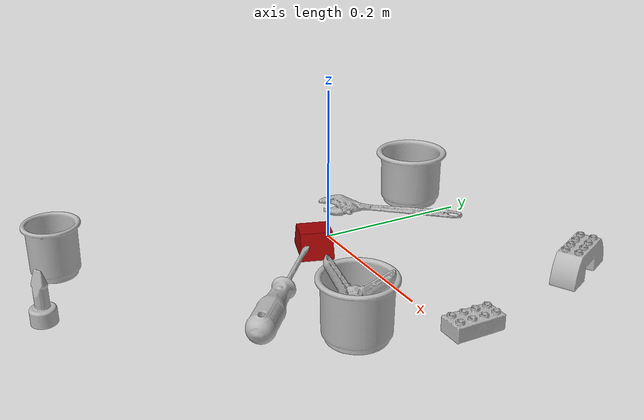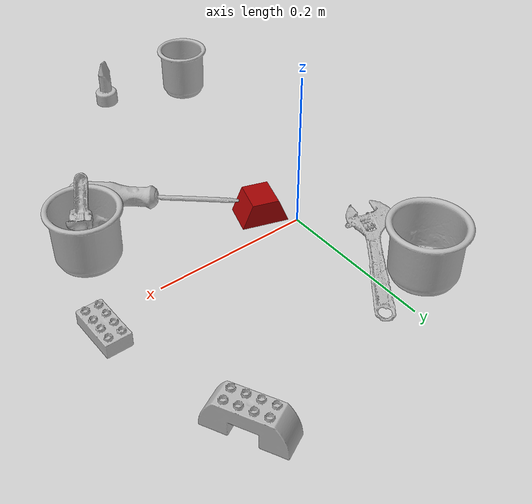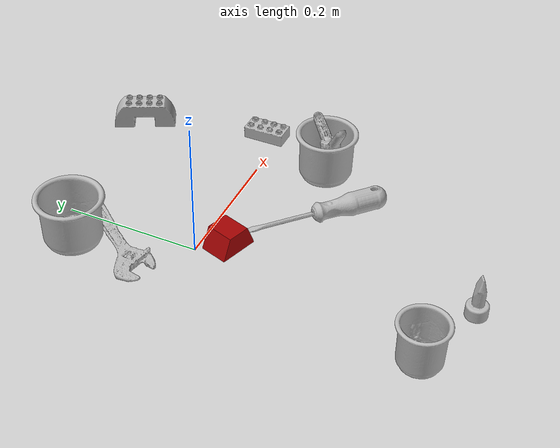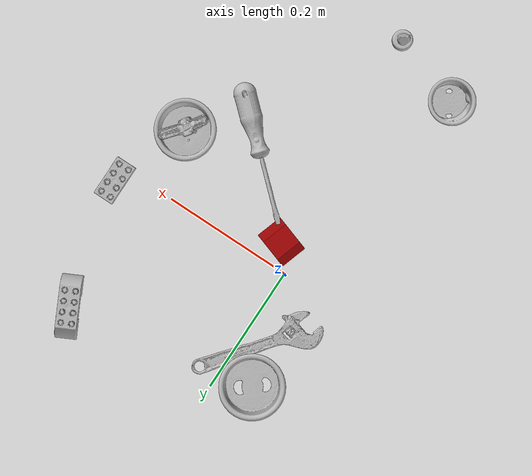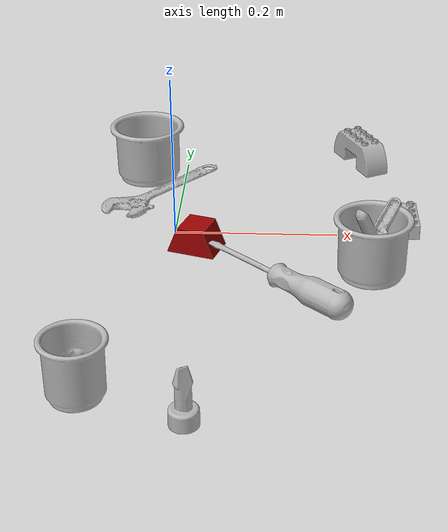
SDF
<sdf version="1.4">
  <world name="default">
    <light name="light1" type="point">
      <pose>0 0 1 0 0 0</pose>
      <diffuse>3 3 3 1</diffuse>
      <specular>3 3 3 1</specular>
    </light>
    <light name="light2" type="point">
      <pose>0 0.5 2 0 0 0</pose>
      <diffuse>1 1 1 1</diffuse>
      <specular>1 1 1 1</specular>
    </light>
    <light name="light3" type="point">
      <pose>0 0.5 2 0 0 0</pose>
      <diffuse>3 3 3 1</diffuse>
      <specular>3 3 3 1</specular>
    </light>
    <scene>
      <ambient>0.7 0.7 0.7</ambient>
    </scene>
    <model name="cup1">
      <link name="link_cup1">
        <collision name="default">
          <geometry>
            <mesh>
              <uri>model://d_cups/collision_meshes/collision.obj</uri>
              <scale>1.0 1.0 1.0</scale>
            </mesh>
          </geometry>
          <surface>
            <friction>
              <ode>
                <mu>0.5</mu>
                <mu2>0.5</mu2>
              </ode>
            </friction>
          <contact>
        <ode>
            <max_vel>0</max_vel>
            <min_depth>0.0001</min_depth>
            <kp>1e8</kp>
        </ode>
    </contact></surface>
        </collision>
        <visual name="default">
          <geometry>
            <mesh>
              <uri>model://d_cups/visual_meshes/visual.dae</uri>
              <scale>1.0 1.0 1.0</scale>
            </mesh>
          </geometry>
        </visual>
        <inertial>
          <mass>0.06783133745193481</mass>
          <pose>0.0008068059105426073 0.0019117397023364902 -0.002266651252284646 0.24012426461604838 -0.24709695541432683 0.5942481546461544</pose>
          <inertia>
            <ixx>5.679078e-05</ixx>
            <iyy>5.662642e-05</iyy>
            <izz>5.1405317e-05</izz>
            <ixy>0</ixy>
            <ixz>0</ixz>
            <iyz>0</iyz>
          </inertia>
        </inertial>
      </link>
      <pose>-0.06447805464267731 -0.34415432810783386 0.034659016877412796 -6.573829931679173e-07 -4.705106808737997e-07 1.5658507029413482</pose>
    </model>
    <model name="cup2">
      <link name="link_cup2">
        <collision name="default">
          <geometry>
            <mesh>
              <uri>model://h_cups/collision_meshes/collision.obj</uri>
              <scale>1.0 1.0 1.0</scale>
            </mesh>
          </geometry>
          <surface>
            <friction>
              <ode>
                <mu>0.5</mu>
                <mu2>0.5</mu2>
              </ode>
            </friction>
          <contact>
        <ode>
            <max_vel>0</max_vel>
            <min_depth>0.0001</min_depth>
            <kp>1e8</kp>
        </ode>
    </contact></surface>
        </collision>
        <visual name="default">
          <geometry>
            <mesh>
              <uri>model://h_cups/visual_meshes/visual.dae</uri>
              <scale>1.0 1.0 1.0</scale>
            </mesh>
          </geometry>
        </visual>
        <inertial>
          <mass>0.0420527309179306</mass>
          <pose>-2.702834171941504e-05 0.0002301869390066713 -0.0018405404407531023 -0.02436231807299455 0.06545237013505961 0.1288477560592675</pose>
          <inertia>
            <ixx>5.430915e-05</ixx>
            <iyy>5.3661057e-05</iyy>
            <izz>5.69554e-05</izz>
            <ixy>0</ixy>
            <ixz>0</ixz>
            <iyz>0</iyz>
          </inertia>
        </inertial>
      </link>
      <pose>0.2367304414510727 -0.09591358155012131 0.03775802254676819 -4.3489730855786055e-06 -7.635528211849093e-06 -0.2120944897519028</pose>
    </model>
    <model name="cup3">
      <link name="link_cup3">
        <collision name="default">
          <geometry>
            <mesh>
              <uri>model://i_cups/collision_meshes/collision.obj</uri>
              <scale>1.0 1.0 1.0</scale>
            </mesh>
          </geometry>
          <surface>
            <friction>
              <ode>
                <mu>0.5</mu>
                <mu2>0.5</mu2>
              </ode>
            </friction>
          <contact>
        <ode>
            <max_vel>0</max_vel>
            <min_depth>0.0001</min_depth>
            <kp>1e8</kp>
        </ode>
    </contact></surface>
        </collision>
        <visual name="default">
          <geometry>
            <mesh>
              <uri>model://i_cups/visual_meshes/visual.dae</uri>
              <scale>1.0 1.0 1.0</scale>
            </mesh>
          </geometry>
        </visual>
        <inertial>
          <mass>0.1172947883605957</mass>
          <pose>0.00011240218736929819 0.00016797319403849542 -0.0008579035638831556 -0.028982974239284674 -0.039873277979934216 -0.3459139003356122</pose>
          <inertia>
            <ixx>0.00016239638</ixx>
            <iyy>0.00016382721</iyy>
            <izz>0.00018150422</izz>
            <ixy>0</ixy>
            <ixz>0</ixz>
            <iyz>0</iyz>
          </inertia>
        </inertial>
      </link>
      <pose>-0.050700053572654724 0.1629934459924698 0.03777485713362694 0.0019473508339820109 -0.006344863385908255 0.38031959119955555</pose>
    </model>
    <model name="toy1">
      <link name="link_toy1">
        <collision name="default">
          <geometry>
            <mesh>
              <uri>model://prism/collision_meshes/collision.obj</uri>
              <scale>0.5 0.5 0.5</scale>
            </mesh>
          </geometry>
          <surface>
            <friction>
              <ode>
                <mu>0.5</mu>
                <mu2>0.5</mu2>
              </ode>
            </friction>
          <contact>
        <ode>
            <max_vel>0</max_vel>
            <min_depth>0.0001</min_depth>
            <kp>1e8</kp>
        </ode>
    </contact></surface>
        </collision>
        <visual name="default">
          <geometry>
            <mesh>
              <uri>model://prism/visual_meshes/visual.dae</uri>
              <scale>0.5 0.5 0.5</scale>
            </mesh>
          </geometry>
        </visual>
        <inertial>
          <mass>0.04854338616132736</mass>
          <pose>-4.92679828312248e-05 -2.480786349678965e-07 -0.0016934549203142524 0.0 0.006559181697473799 0.0</pose>
          <inertia>
            <ixx>1.0952453e-05</ixx>
            <iyy>1.3236178e-05</iyy>
            <izz>1.6212734e-05</izz>
            <ixy>0</ixy>
            <ixz>0</ixz>
            <iyz>0</iyz>
          </inertia>
        </inertial>
      </link>
      <pose>0.029384857043623924 -0.03696337342262268 0.016084924340248108 1.0221792955277106e-05 2.7783497341581063e-05 2.8256212483783067</pose>
    </model>
    <model name="toy2">
      <link name="link_toy2">
        <collision name="default">
          <geometry>
            <mesh>
              <uri>model://e_toy_airplane/collision_meshes/collision.obj</uri>
              <scale>1.0 1.0 1.0</scale>
            </mesh>
          </geometry>
          <surface>
            <friction>
              <ode>
                <mu>0.5</mu>
                <mu2>0.5</mu2>
              </ode>
            </friction>
          <contact>
        <ode>
            <max_vel>0</max_vel>
            <min_depth>0.0001</min_depth>
            <kp>1e8</kp>
        </ode>
    </contact></surface>
        </collision>
        <visual name="default">
          <geometry>
            <mesh>
              <uri>model://e_toy_airplane/visual_meshes/visual.dae</uri>
              <scale>1.0 1.0 1.0</scale>
            </mesh>
          </geometry>
        </visual>
        <inertial>
          <mass>0.014407381415367126</mass>
          <pose>0.00011740459740394726 -2.2482932763523422e-05 -0.011187206022441387 0.005518488041491648 0.009228285270614433 0.15041380385765837</pose>
          <inertia>
            <ixx>4.397297e-06</ixx>
            <iyy>4.352315e-06</iyy>
            <izz>1.3215607e-06</izz>
            <ixy>0</ixy>
            <ixz>0</ixz>
            <iyz>0</iyz>
          </inertia>
        </inertial>
      </link>
      <pose>0.044588495045900345 -0.38394585251808167 0.033212218433618546 6.349147436090359e-05 -9.13340978178272e-05 -1.208145316757221</pose>
    </model>
    <model name="toy3">
      <link name="link_toy3">
        <collision name="default">
          <geometry>
            <mesh>
              <uri>model://e_lego_duplo/collision_meshes/collision.obj</uri>
              <scale>1.0 1.0 1.0</scale>
            </mesh>
          </geometry>
          <surface>
            <friction>
              <ode>
                <mu>0.5</mu>
                <mu2>0.5</mu2>
              </ode>
            </friction>
          <contact>
        <ode>
            <max_vel>0</max_vel>
            <min_depth>0.0001</min_depth>
            <kp>1e8</kp>
        </ode>
    </contact></surface>
        </collision>
        <visual name="default">
          <geometry>
            <mesh>
              <uri>model://e_lego_duplo/visual_meshes/visual.dae</uri>
              <scale>1.0 1.0 1.0</scale>
            </mesh>
          </geometry>
        </visual>
        <inertial>
          <mass>0.059077512472867966</mass>
          <pose>0.00032560460385866463 0.0002348544221604243 0.0019521447829902172 -0.0225678114641467 -6.824730634042773e-05 -0.007625154901652298</pose>
          <inertia>
            <ixx>1.2319611e-05</ixx>
            <iyy>5.0562856e-05</iyy>
            <izz>4.923807e-05</izz>
            <ixy>0</ixy>
            <ixz>0</ixz>
            <iyz>0</iyz>
          </inertia>
        </inertial>
      </link>
      <pose>0.23839516937732697 0.21539632976055145 0.021808825433254242 1.8270214296902837e-05 1.282149545332128e-06 2.0376208730772114</pose>
    </model>
    <model name="toy4">
      <link name="link_toy4">
        <collision name="default">
          <geometry>
            <mesh>
              <uri>model://c_lego_duplo/collision_meshes/collision.obj</uri>
              <scale>1.0 1.0 1.0</scale>
            </mesh>
          </geometry>
          <surface>
            <friction>
              <ode>
                <mu>0.5</mu>
                <mu2>0.5</mu2>
              </ode>
            </friction>
          <contact>
        <ode>
            <max_vel>0</max_vel>
            <min_depth>0.0001</min_depth>
            <kp>1e8</kp>
        </ode>
    </contact></surface>
        </collision>
        <visual name="default">
          <geometry>
            <mesh>
              <uri>model://c_lego_duplo/visual_meshes/visual.dae</uri>
              <scale>1.0 1.0 1.0</scale>
            </mesh>
          </geometry>
        </visual>
        <inertial>
          <mass>0.019630447030067444</mass>
          <pose>0.000316459103487432 0.00019464583601802588 0.0010453149443492293 -0.011520787241280632 0.0059000791517924015 0.031100331826339908</pose>
          <inertia>
            <ixx>7.554163e-06</ixx>
            <iyy>2.4130718e-06</iyy>
            <izz>8.827816e-06</izz>
            <ixy>0</ixy>
            <ixz>0</ixz>
            <iyz>0</iyz>
          </inertia>
        </inertial>
      </link>
      <pose>0.28476482629776 0.022674020379781723 0.011980528943240643 0.007319537134254916 -0.002191369560882143 3.115763418170628</pose>
    </model>
    <model name="hardware1">
      <link name="link_hardware1">
        <collision name="default">
          <geometry>
            <mesh>
              <uri>model://flat_screwdriver/collision_meshes/collision.obj</uri>
              <scale>1.0 1.0 1.0</scale>
            </mesh>
          </geometry>
          <surface>
            <friction>
              <ode>
                <mu>0.5</mu>
                <mu2>0.5</mu2>
              </ode>
            </friction>
          <contact>
        <ode>
            <max_vel>0</max_vel>
            <min_depth>0.0001</min_depth>
            <kp>1e8</kp>
        </ode>
    </contact></surface>
        </collision>
        <visual name="default">
          <geometry>
            <mesh>
              <uri>model://flat_screwdriver/visual_meshes/visual.dae</uri>
              <scale>1.0 1.0 1.0</scale>
            </mesh>
          </geometry>
        </visual>
        <inertial>
          <mass>0.05795019492506981</mass>
          <pose>-0.0489187128841877 -0.0006576800369657576 -0.0006140916375443339 -0.5616548332173045 -0.0032337243504420286 0.0069822829580931615</pose>
          <inertia>
            <ixx>6.846775e-06</ixx>
            <iyy>8.6921296e-05</iyy>
            <izz>8.688106e-05</izz>
            <ixy>0</ixy>
            <ixz>0</ixz>
            <iyz>0</iyz>
          </inertia>
        </inertial>
      </link>
      <pose>0.12827308475971222 -0.13010549545288086 0.01786182075738907 -0.18195241288054384 -0.005213881675792994 2.3991920590530142</pose>
    </model>
    <model name="hardware2">
      <link name="link_hardware2">
        <collision name="default">
          <geometry>
            <mesh>
              <uri>model://medium_clamp/collision_meshes/collision.obj</uri>
              <scale>1.0 1.0 1.0</scale>
            </mesh>
          </geometry>
          <surface>
            <friction>
              <ode>
                <mu>0.5</mu>
                <mu2>0.5</mu2>
              </ode>
            </friction>
          <contact>
        <ode>
            <max_vel>0</max_vel>
            <min_depth>0.0001</min_depth>
            <kp>1e8</kp>
        </ode>
    </contact></surface>
        </collision>
        <visual name="default">
          <geometry>
            <mesh>
              <uri>model://medium_clamp/visual_meshes/visual.dae</uri>
              <scale>1.0 1.0 1.0</scale>
            </mesh>
          </geometry>
        </visual>
        <inertial>
          <mass>0.028340468183159828</mass>
          <pose>0.0053909942507743835 0.0003953247796744108 -0.0001222157443407923 -0.001226920261124021 0.0025845025680982987 0.03820769890719856</pose>
          <inertia>
            <ixx>7.720961e-06</ixx>
            <iyy>1.1236185e-05</iyy>
            <izz>1.7307093e-05</izz>
            <ixy>0</ixy>
            <ixz>0</ixz>
            <iyz>0</iyz>
          </inertia>
        </inertial>
      </link>
      <pose>0.23813368380069733 -0.10073599219322205 0.054192401468753815 1.5908221975839902 1.402086776259992 -2.205033670210469</pose>
    </model>
    <model name="hardware3">
      <link name="link_hardware3">
        <collision name="default">
          <geometry>
            <mesh>
              <uri>model://adjustable_wrench/collision_meshes/collision.obj</uri>
              <scale>1.0 1.0 1.0</scale>
            </mesh>
          </geometry>
          <surface>
            <friction>
              <ode>
                <mu>0.5</mu>
                <mu2>0.5</mu2>
              </ode>
            </friction>
          <contact>
        <ode>
            <max_vel>0</max_vel>
            <min_depth>0.0001</min_depth>
            <kp>1e8</kp>
        </ode>
    </contact></surface>
        </collision>
        <visual name="default">
          <geometry>
            <mesh>
              <uri>model://adjustable_wrench/visual_meshes/visual.dae</uri>
              <scale>1.0 1.0 1.0</scale>
            </mesh>
          </geometry>
        </visual>
        <inertial>
          <mass>0.023935195058584213</mass>
          <pose>0.03740980476140976 -0.0028968877159059048 -0.001114922808483243 -0.014473210185193002 0.006656019736435525 -0.010954188403863873</pose>
          <inertia>
            <ixx>4.898683e-06</ixx>
            <iyy>5.733333e-05</iyy>
            <izz>6.197185e-05</izz>
            <ixy>0</ixy>
            <ixz>0</ixz>
            <iyz>0</iyz>
          </inertia>
        </inertial>
      </link>
      <pose>-0.025654297322034836 0.10762599110603333 0.006125052459537983 0.046759971958840595 -0.029270462094556634 -2.238043924322813</pose>
    </model>
  <physics type="ode">
      <max_contacts>50</max_contacts>
      <ode>
        <solver>
          <type>quick</type>
          <iters>75</iters>
        </solver>
        <constraints>
          <contact_max_correcting_vel>0</contact_max_correcting_vel>
          <contact_surface_layer>0</contact_surface_layer>
        </constraints>
      </ode>
    </physics></world>
</sdf>
